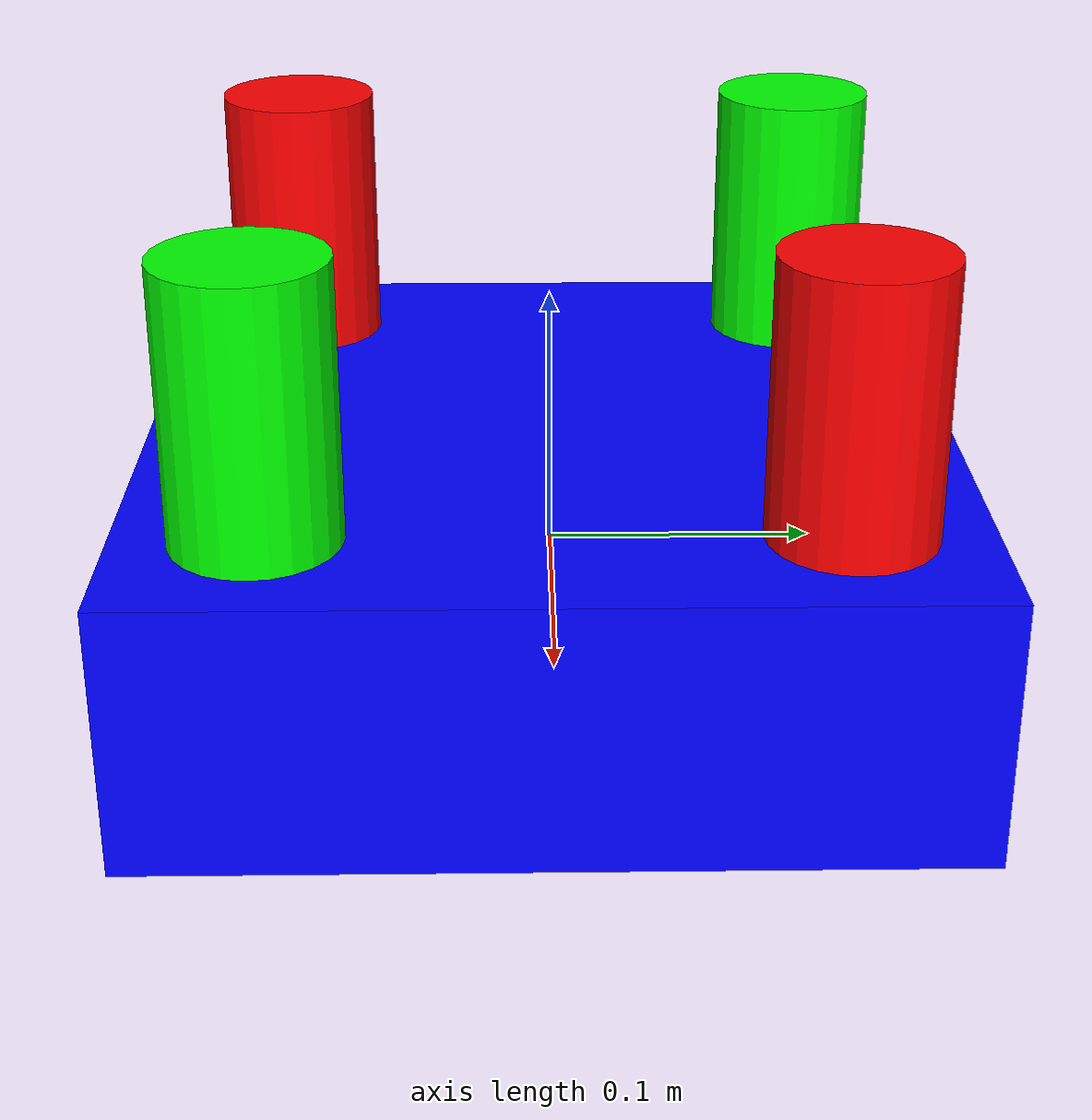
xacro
<?xml version="1.0"?>
<robot xmlns:xacro="http://www.ros.org/wiki/xacro" name="test_robot">

  <!-- 定义一些常量 -->
  <xacro:property name="base_width" value="0.3" />
  <xacro:property name="base_length" value="0.3" />
  <xacro:property name="base_height" value="0.1" />

  <!-- 材质定义 -->
  <material name="blue">
    <color rgba="0 0 1 1"/>
  </material>

  <material name="red">
    <color rgba="1 0 0 1"/>
  </material>

  <material name="green">
    <color rgba="0 1 0 1"/>
  </material>

  <material name="grey">
    <color rgba="0.5 0.5 0.5 1"/>
  </material>

  <!-- 基座链接 -->
  <link name="base_link">
    <visual>
      <geometry>
        <box size="${base_length} ${base_width} ${base_height}"/>
      </geometry>
      <material name="blue"/>
    </visual>
    <collision>
      <geometry>
        <box size="${base_length} ${base_width} ${base_height}"/>
      </geometry>
    </collision>
    <inertial>
      <mass value="5.0"/>
      <inertia ixx="1.0" ixy="0.0" ixz="0.0" iyy="1.0" iyz="0.0" izz="1.0"/>
    </inertial>
  </link>

  <!-- 电机1链接 -->
  <link name="motor1_link">
    <visual>
      <geometry>
        <cylinder radius="0.03" length="0.1"/>
      </geometry>
      <material name="red"/>
    </visual>
    <collision>
      <geometry>
        <cylinder radius="0.03" length="0.1"/>
      </geometry>
    </collision>
    <inertial>
      <mass value="0.5"/>
      <inertia ixx="0.01" ixy="0.0" ixz="0.0" iyy="0.01" iyz="0.0" izz="0.01"/>
    </inertial>
  </link>

  <!-- 电机1关节 -->
  <joint name="motor1" type="continuous">
    <parent link="base_link"/>
    <child link="motor1_link"/>
    <origin xyz="0.1 0.1 ${base_height/2 + 0.05}" rpy="0 0 0"/>
    <axis xyz="0 0 1"/>
    <dynamics damping="0.1"/>
  </joint>

  <!-- 电机2链接 -->
  <link name="motor2_link">
    <visual>
      <geometry>
        <cylinder radius="0.03" length="0.1"/>
      </geometry>
      <material name="green"/>
    </visual>
    <collision>
      <geometry>
        <cylinder radius="0.03" length="0.1"/>
      </geometry>
    </collision>
    <inertial>
      <mass value="0.5"/>
      <inertia ixx="0.01" ixy="0.0" ixz="0.0" iyy="0.01" iyz="0.0" izz="0.01"/>
    </inertial>
  </link>

  <!-- 电机2关节 -->
  <joint name="motor2" type="continuous">
    <parent link="base_link"/>
    <child link="motor2_link"/>
    <origin xyz="-0.1 0.1 ${base_height/2 + 0.05}" rpy="0 0 0"/>
    <axis xyz="0 0 1"/>
    <dynamics damping="0.1"/>
  </joint>

  <!-- 电机3链接 -->
  <link name="motor3_link">
    <visual>
      <geometry>
        <cylinder radius="0.03" length="0.1"/>
      </geometry>
      <material name="red"/>
    </visual>
    <collision>
      <geometry>
        <cylinder radius="0.03" length="0.1"/>
      </geometry>
    </collision>
    <inertial>
      <mass value="0.5"/>
      <inertia ixx="0.01" ixy="0.0" ixz="0.0" iyy="0.01" iyz="0.0" izz="0.01"/>
    </inertial>
  </link>

  <!-- 电机3关节 -->
  <joint name="motor3" type="continuous">
    <parent link="base_link"/>
    <child link="motor3_link"/>
    <origin xyz="-0.1 -0.1 ${base_height/2 + 0.05}" rpy="0 0 0"/>
    <axis xyz="0 0 1"/>
    <dynamics damping="0.1"/>
  </joint>

  <!-- 电机4链接 -->
  <link name="motor4_link">
    <visual>
      <geometry>
        <cylinder radius="0.03" length="0.1"/>
      </geometry>
      <material name="green"/>
    </visual>
    <collision>
      <geometry>
        <cylinder radius="0.03" length="0.1"/>
      </geometry>
    </collision>
    <inertial>
      <mass value="0.5"/>
      <inertia ixx="0.01" ixy="0.0" ixz="0.0" iyy="0.01" iyz="0.0" izz="0.01"/>
    </inertial>
  </link>

  <!-- 电机4关节 -->
  <joint name="motor4" type="continuous">
    <parent link="base_link"/>
    <child link="motor4_link"/>
    <origin xyz="0.1 -0.1 ${base_height/2 + 0.05}" rpy="0 0 0"/>
    <axis xyz="0 0 1"/>
    <dynamics damping="0.1"/>
  </joint>

  <!-- ROS2 Control 硬件接口 -->
  <ros2_control name="actuator_interface_hw" type="system">
    <hardware>
      <plugin>actuator_interface/Ros2ControlHw</plugin>
      <param name="config_file">$(find actuator_interface)/test/config/test_virtual_can.yaml</param>
    </hardware>

    <joint name="motor1">
      <command_interface name="effort">
        <param name="min">-8000</param>
        <param name="max">8000</param>
      </command_interface>
      <command_interface name="position">
        <param name="min">-6.28</param>
        <param name="max">6.28</param>
      </command_interface>
      <state_interface name="position"/>
      <state_interface name="velocity"/>
      <state_interface name="effort"/>
    </joint>

    <joint name="motor2">
      <command_interface name="effort">
        <param name="min">-8000</param>
        <param name="max">8000</param>
      </command_interface>
      <command_interface name="position">
        <param name="min">-6.28</param>
        <param name="max">6.28</param>
      </command_interface>
      <state_interface name="position"/>
      <state_interface name="velocity"/>
      <state_interface name="effort"/>
    </joint>

    <joint name="motor3">
      <command_interface name="effort">
        <param name="min">-8000</param>
        <param name="max">8000</param>
      </command_interface>
      <command_interface name="position">
        <param name="min">-6.28</param>
        <param name="max">6.28</param>
      </command_interface>
      <state_interface name="position"/>
      <state_interface name="velocity"/>
      <state_interface name="effort"/>
    </joint>

    <joint name="motor4">
      <command_interface name="effort">
        <param name="min">-8000</param>
        <param name="max">8000</param>
      </command_interface>
      <command_interface name="position">
        <param name="min">-6.28</param>
        <param name="max">6.28</param>
      </command_interface>
      <state_interface name="position"/>
      <state_interface name="velocity"/>
      <state_interface name="effort"/>
    </joint>

  </ros2_control>

</robot>
